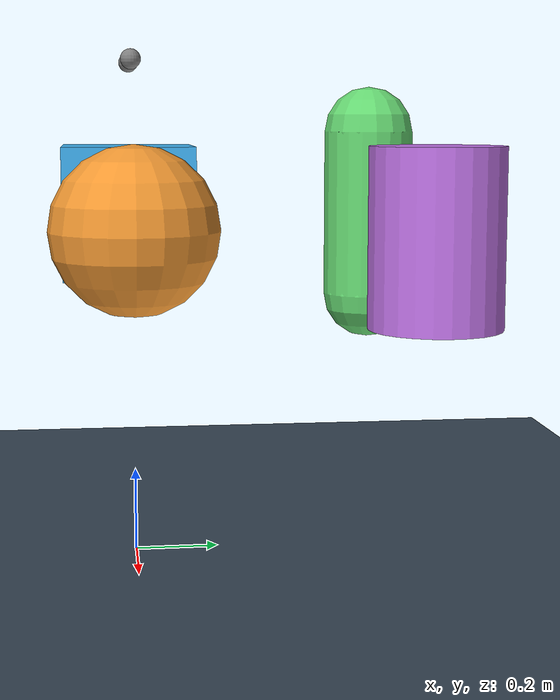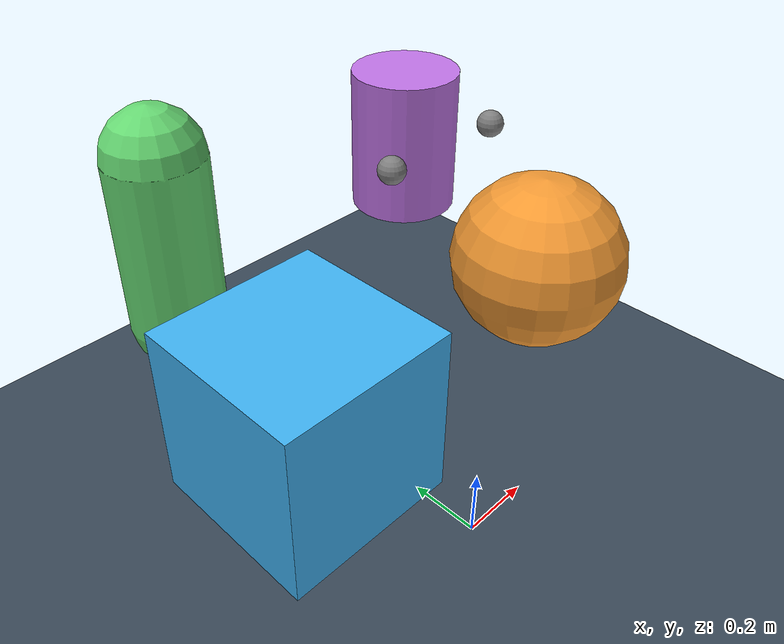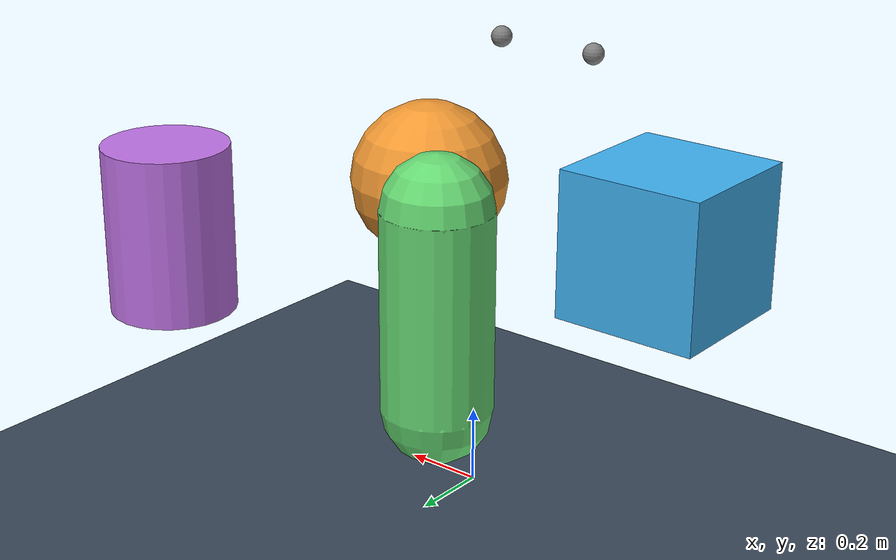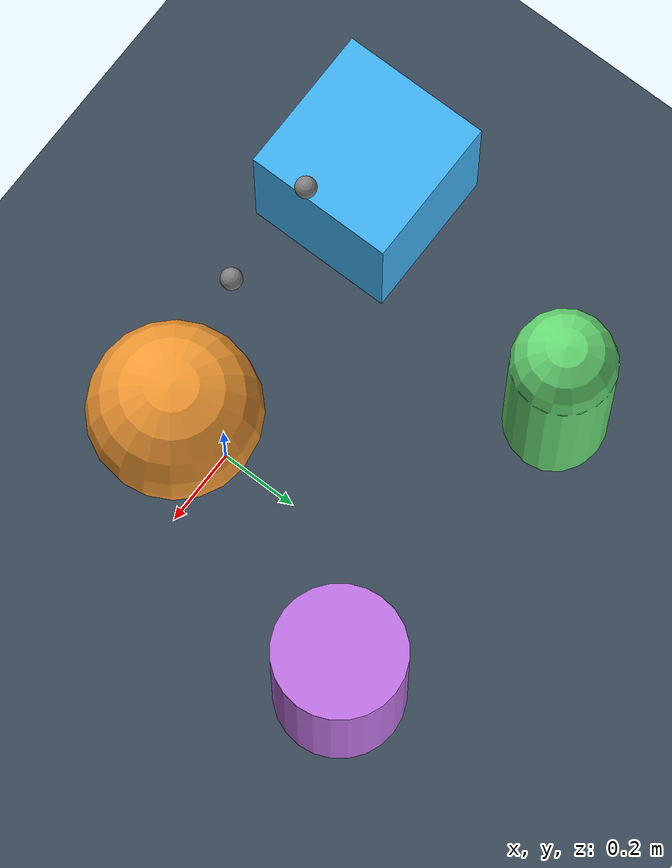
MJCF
<mujoco model="equality constraint markers">
  <option gravity="0 0 0"/>
  <statistic center="0 .25 .8" extent="1.1"/>
  <visual>
    <global azimuth="135" elevation="-22" fovy="42"/>
    <scale constraint="0.12"/>
  </visual>
  <worldbody>
    <light directional="true" pos="0 -3 5" dir="0 .4 -1"/>
    <camera name="overview" pos="0 -3.2 2.1" xyaxes="1 0 0 0 .4 .92"/>
    <geom type="plane" size="2 2 .05" rgba=".22 .28 .34 1"/>
    <body name="connect_a" pos="-.55 0 .8">
      <freejoint/>
      <geom type="box" size=".18 .18 .18" rgba=".25 .7 .95 1"/>
      <site name="connect_site_a" pos=".22 0 .4" size=".025"/>
    </body>
    <body name="connect_b" pos=".15 0 .8">
      <freejoint/>
      <geom type="sphere" size=".2" rgba=".95 .6 .2 1"/>
      <site name="connect_site_b" pos="-.22 0 .4" size=".025"/>
    </body>
    <body name="weld_a" pos="-.4 .65 .8">
      <freejoint/>
      <geom type="capsule" size=".12 .22" rgba=".4 .85 .45 1"/>
    </body>
    <body name="weld_b" pos=".4 .65 .8">
      <freejoint/>
      <geom type="cylinder" size=".15 .2" rgba=".75 .45 .9 1"/>
    </body>
  </worldbody>
  <equality>
    <connect name="site_connect" site1="connect_site_a" site2="connect_site_b"/>
    <weld name="body_weld" body1="weld_a" body2="weld_b" relpose="0 0 .5 1 0 0 0"/>
  </equality>
</mujoco>
